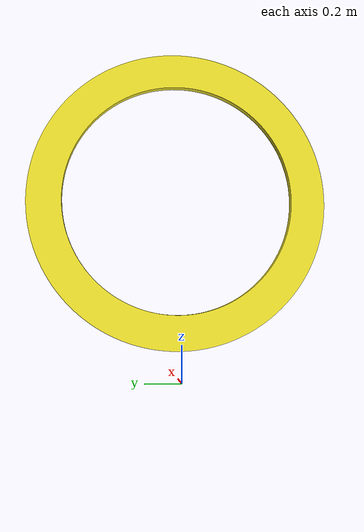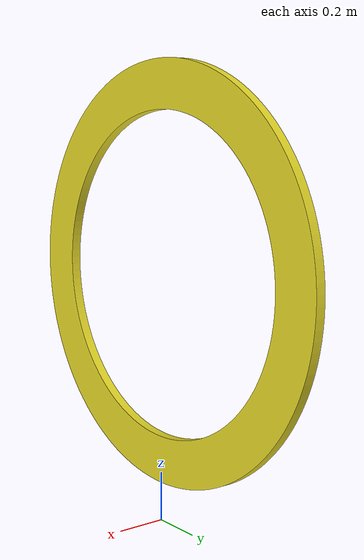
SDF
<?xml version="1.0" ?>
<sdf version="1.6">
  <model name="circle_gate">
  <static>1</static>
    <link name="link">
      <inertial>
        <mass>10.0</mass>
        <inertia>
          <ixx>10.0</ixx>
          <ixy>0.0</ixy>
          <ixz>0.0</ixz>
          <iyy>10.0</iyy>
          <iyz>0.0</iyz>
          <izz>10.0</izz>
        </inertia>
      </inertial>
      <collision name="collision">
        <pose>0 0 1 0 0 0</pose>
        <geometry>
          <mesh>
            <uri>model://circle_gate/meshes/circle_gate.stl</uri>
            <scale>1 1 1</scale>
          </mesh>
        </geometry>
      </collision>
      <visual name="visual">
        <pose>0 0 1 0 0 0</pose>
        <geometry>
          <mesh>
            <uri>model://circle_gate/meshes/circle_gate.stl</uri>
            <scale>1 1 1</scale>
          </mesh>
        </geometry>
        <material>
          <script>
            <uri>file://media/materials/scripts/gazebo.material</uri>
            <name>Gazebo/Yellow</name>
          </script>
       </material>
      </visual>
    </link>
  </model>
</sdf>
